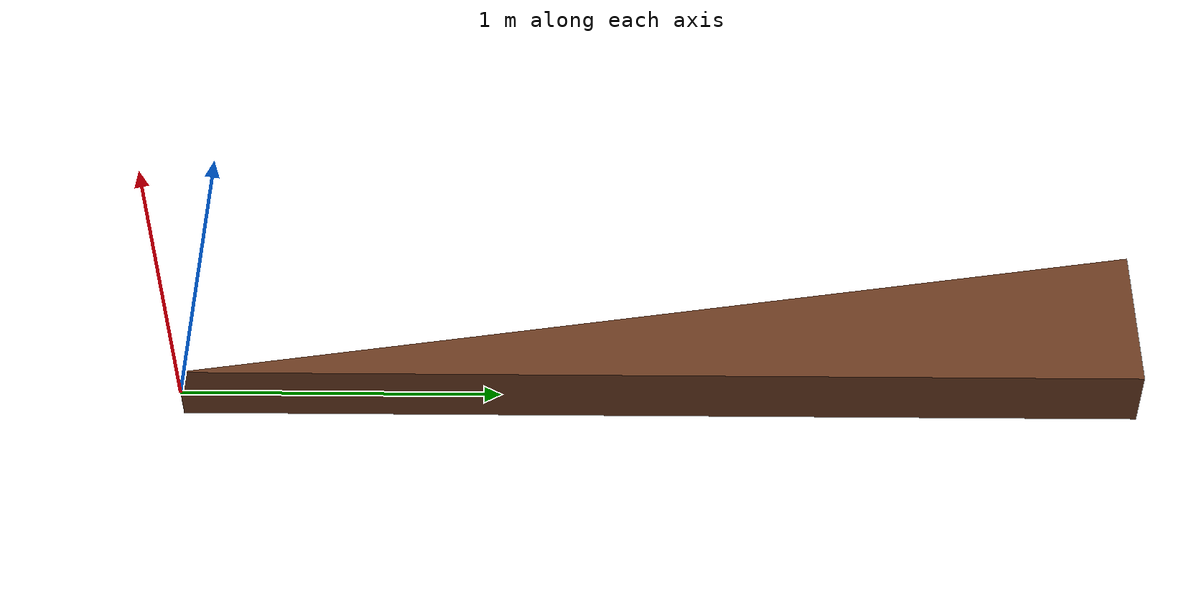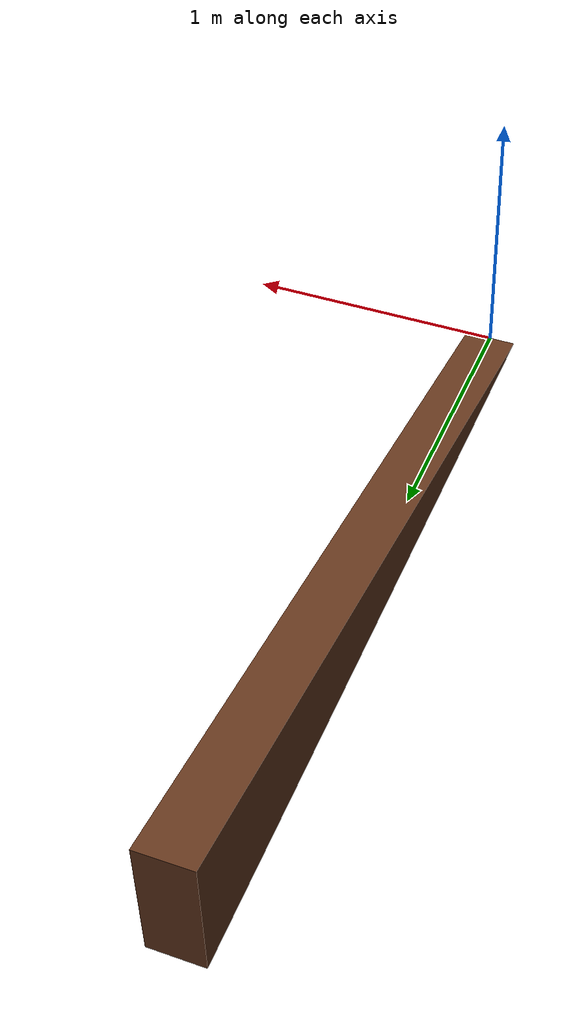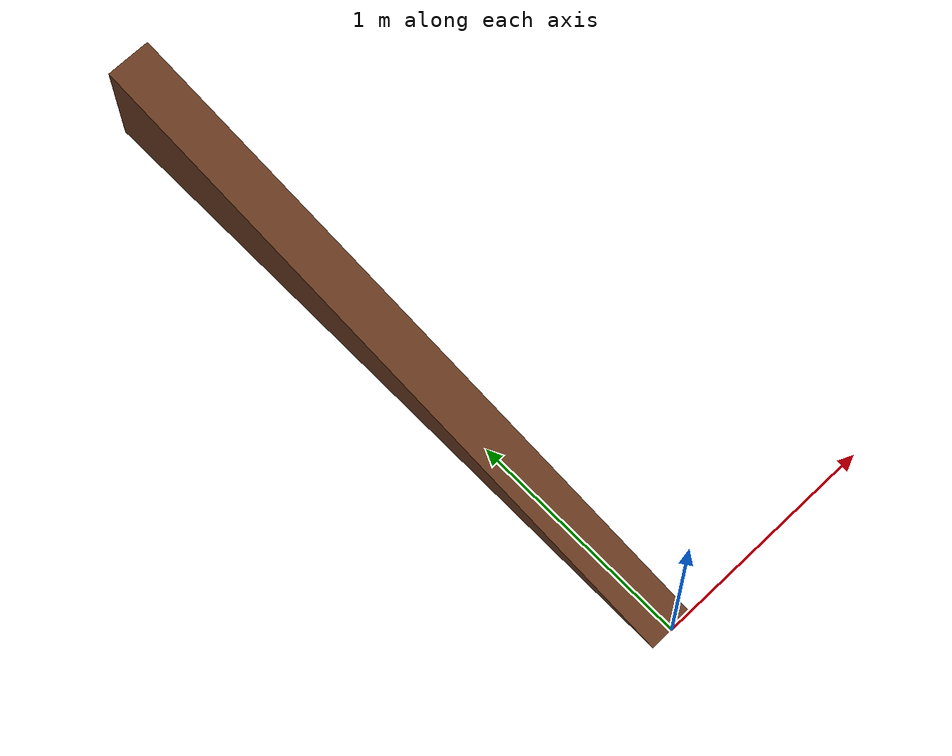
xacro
<?xml version="1.0"?>
<robot xmlns:xacro="http://ros.org/wiki/xacro" name="slope_from_mesh">

  <!-- ─────── parameters ─────── -->
  <xacro:property name="slope_mass"        value="5.0"/>
  <xacro:property name="mesh_path"
                  value="file:///home/sughetto/my_robot_ws/src/wx250s_bringup/meshes/wedge_3m_0.2m_7pct.stl"/>
  <xacro:property name="mesh_length_y_axis" value="3.0"/>
  <xacro:property name="mesh_width_x_axis"  value="0.2"/>
  <xacro:property name="mesh_height_z_max"  value="0.50"/>

  <!-- ─────── material *for RViz* ─────── -->
  <material name="slope_brown">
    <color rgba="0.40 0.22 0.12 1.0"/>
  </material>

  <link name="slope_base_link">
    <visual>
      <origin xyz="0 0 0" rpy="0 0 0"/>
      <geometry>
        <mesh filename="${mesh_path}" scale="1 1 1"/>
      </geometry>
      <!-- ▶ MOD -->
      <material name="slope_brown"/>
    </visual>

    <collision>
      <origin xyz="0 0 0" rpy="0 0 0"/>
      <geometry>
        <mesh filename="${mesh_path}" scale="1 1 1"/>
      </geometry>
    </collision>

    <inertial>
      <origin xyz="0 ${mesh_length_y_axis/3} ${mesh_height_z_max/3}" rpy="0 0 0"/>
      <mass value="${slope_mass}"/>
      <xacro:property name="H_avg" value="${mesh_height_z_max / 2.0}"/>
      <xacro:property name="Ixx_approx"
                      value="${slope_mass/12 * (mesh_width_x_axis*mesh_width_x_axis + H_avg*H_avg)}"/>
      <xacro:property name="Iyy_approx"
                      value="${slope_mass/12 * (mesh_length_y_axis*mesh_length_y_axis + H_avg*H_avg)}"/>
      <xacro:property name="Izz_approx"
                      value="${slope_mass/12 * (mesh_length_y_axis*mesh_length_y_axis + mesh_width_x_axis*mesh_width_x_axis)}"/>
      <inertia ixx="${Ixx_approx}" ixy="0" ixz="0"
               iyy="${Iyy_approx}" iyz="0"
               izz="${Izz_approx}"/>
    </inertial>
  </link>

  <!-- ─────── Gazebo extensions ─────── -->
  <gazebo reference="slope_base_link">
    <static>true</static>
    <mu1>0.8</mu1>
    <mu2>0.7</mu2>
    <kp>1e6</kp>
    <kd>100.0</kd>

    <!-- ▶ MOD : use built-in wood material (nice specular rim) -->
    <material>Gazebo/Wood</material>
  </gazebo>

</robot>
